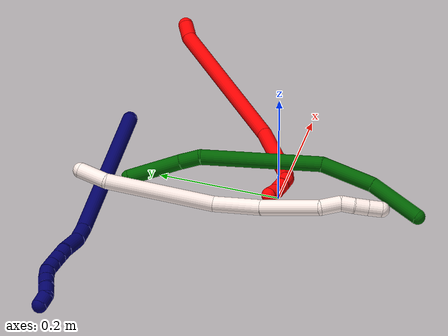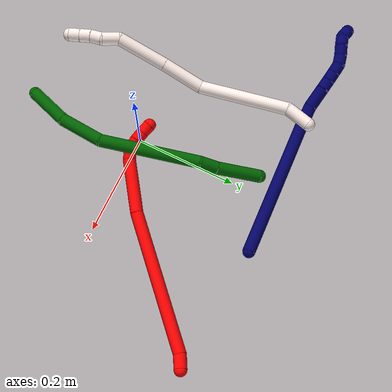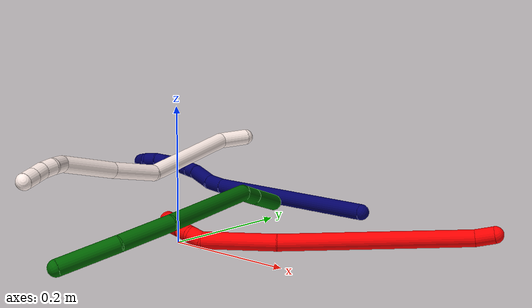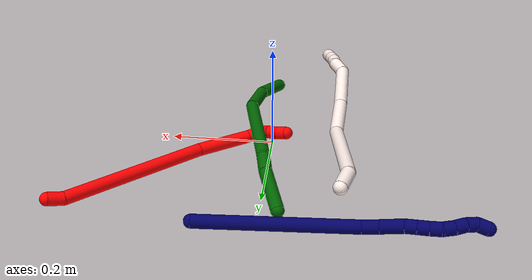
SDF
<sdf version="1.7">
 <world name="default">
  <model name="2">
   <static>0</static>
   <link name="2">
    <collision name="collision-cylinder-e_1_1_4">
     <pose>-0.003413 -0.002862 -0.014145 2.94198 -0.232242 -1.72277</pose>
     <geometry><cylinder><radius>0.0125</radius><length>0.029659</length></cylinder></geometry>
     <surface>
      <friction><ode><mu>1.16</mu><mu2>1.16</mu2><slip1>0</slip1><slip2>0</slip2></ode></friction>
      <contact><ode><kp>1e+06</kp><kd>1</kd><max_vel>0</max_vel><min_depth>0.001</min_depth></ode></contact>
     </surface>
    </collision>
    <visual name="visual-cylinder-e_1_1_4">
     <pose>-0.003413 -0.002862 -0.014145 2.94198 -0.232242 -1.72277</pose>
     <geometry><cylinder><radius>0.0125</radius><length>0.029659</length></cylinder></geometry>
     <material><ambient>1 0 0 1</ambient></material>
    </visual>
    <collision name="collision-cylinder-e_2_4_5">
     <pose>-0.029843 -0.07486 -0.148525 2.61975 -0.16445 -0.598732</pose>
     <geometry><cylinder><radius>0.0125</radius><length>0.281184</length></cylinder></geometry>
     <surface>
      <friction><ode><mu>1.16</mu><mu2>1.16</mu2><slip1>0</slip1><slip2>0</slip2></ode></friction>
      <contact><ode><kp>1e+06</kp><kd>1</kd><max_vel>0</max_vel><min_depth>0.001</min_depth></ode></contact>
     </surface>
    </collision>
    <visual name="visual-cylinder-e_2_4_5">
     <pose>-0.029843 -0.07486 -0.148525 2.61975 -0.16445 -0.598732</pose>
     <geometry><cylinder><radius>0.0125</radius><length>0.281184</length></cylinder></geometry>
     <material><ambient>1 0 0 1</ambient></material>
    </visual>
    <collision name="collision-cylinder-e_3_5_6">
     <pose>-0.068632 -0.166262 -0.315917 2.70049 -0.293714 -1.16643</pose>
     <geometry><cylinder><radius>0.0125</radius><length>0.108965</length></cylinder></geometry>
     <surface>
      <friction><ode><mu>1.16</mu><mu2>1.16</mu2><slip1>0</slip1><slip2>0</slip2></ode></friction>
      <contact><ode><kp>1e+06</kp><kd>1</kd><max_vel>0</max_vel><min_depth>0.001</min_depth></ode></contact>
     </surface>
    </collision>
    <visual name="visual-cylinder-e_3_5_6">
     <pose>-0.068632 -0.166262 -0.315917 2.70049 -0.293714 -1.16643</pose>
     <geometry><cylinder><radius>0.0125</radius><length>0.108965</length></cylinder></geometry>
     <material><ambient>1 0 0 1</ambient></material>
    </visual>
    <collision name="collision-cylinder-e_4_6_7">
     <pose>-0.091101 -0.192611 -0.369299 2.56093 -0.732546 -1.81811</pose>
     <geometry><cylinder><radius>0.0125</radius><length>0.020025</length></cylinder></geometry>
     <surface>
      <friction><ode><mu>1.16</mu><mu2>1.16</mu2><slip1>0</slip1><slip2>0</slip2></ode></friction>
      <contact><ode><kp>1e+06</kp><kd>1</kd><max_vel>0</max_vel><min_depth>0.001</min_depth></ode></contact>
     </surface>
    </collision>
    <visual name="visual-cylinder-e_4_6_7">
     <pose>-0.091101 -0.192611 -0.369299 2.56093 -0.732546 -1.81811</pose>
     <geometry><cylinder><radius>0.0125</radius><length>0.020025</length></cylinder></geometry>
     <material><ambient>1 0 0 1</ambient></material>
    </visual>
    <collision name="collision-cylinder-e_5_7_8">
     <pose>-0.105878 -0.19688 -0.381474 3.11039 -0.935757 -3.07985</pose>
     <geometry><cylinder><radius>0.0125</radius><length>0.020076</length></cylinder></geometry>
     <surface>
      <friction><ode><mu>1.16</mu><mu2>1.16</mu2><slip1>0</slip1><slip2>0</slip2></ode></friction>
      <contact><ode><kp>1e+06</kp><kd>1</kd><max_vel>0</max_vel><min_depth>0.001</min_depth></ode></contact>
     </surface>
    </collision>
    <visual name="visual-cylinder-e_5_7_8">
     <pose>-0.105878 -0.19688 -0.381474 3.11039 -0.935757 -3.07985</pose>
     <geometry><cylinder><radius>0.0125</radius><length>0.020076</length></cylinder></geometry>
     <material><ambient>1 0 0 1</ambient></material>
    </visual>
    <collision name="collision-cylinder-e_6_8_9">
     <pose>-0.121774 -0.195439 -0.393465 -2.8785 -0.895902 2.60423</pose>
     <geometry><cylinder><radius>0.0125</radius><length>0.020018</length></cylinder></geometry>
     <surface>
      <friction><ode><mu>1.16</mu><mu2>1.16</mu2><slip1>0</slip1><slip2>0</slip2></ode></friction>
      <contact><ode><kp>1e+06</kp><kd>1</kd><max_vel>0</max_vel><min_depth>0.001</min_depth></ode></contact>
     </surface>
    </collision>
    <visual name="visual-cylinder-e_6_8_9">
     <pose>-0.121774 -0.195439 -0.393465 -2.8785 -0.895902 2.60423</pose>
     <geometry><cylinder><radius>0.0125</radius><length>0.020018</length></cylinder></geometry>
     <material><ambient>1 0 0 1</ambient></material>
    </visual>
    <collision name="collision-cylinder-e_7_9_2">
     <pose>-0.138675 -0.192649 -0.403604 -2.86514 -1.13216 2.71055</pose>
     <geometry><cylinder><radius>0.0125</radius><length>0.020073</length></cylinder></geometry>
     <surface>
      <friction><ode><mu>1.16</mu><mu2>1.16</mu2><slip1>0</slip1><slip2>0</slip2></ode></friction>
      <contact><ode><kp>1e+06</kp><kd>1</kd><max_vel>0</max_vel><min_depth>0.001</min_depth></ode></contact>
     </surface>
    </collision>
    <visual name="visual-cylinder-e_7_9_2">
     <pose>-0.138675 -0.192649 -0.403604 -2.86514 -1.13216 2.71055</pose>
     <geometry><cylinder><radius>0.0125</radius><length>0.020073</length></cylinder></geometry>
     <material><ambient>1 0 0 1</ambient></material>
    </visual>
    <collision name="collision-sphere-2">
     <pose>-0.147761 -0.191486 -0.407705 0 -0 0</pose>
     <geometry><sphere><radius>0.0125</radius></sphere></geometry>
     <surface>
      <friction><ode><mu>1.16</mu><mu2>1.16</mu2><slip1>0</slip1><slip2>0</slip2></ode></friction>
      <contact><ode><kp>1e+06</kp><kd>1</kd><max_vel>0</max_vel><min_depth>0.001</min_depth></ode></contact>
     </surface>
    </collision>
    <visual name="visual-sphere-2">
     <pose>-0.147761 -0.191486 -0.407705 0 -0 0</pose>
     <geometry><sphere><radius>0.0125</radius></sphere></geometry>
     <material><ambient>1 0 0 1</ambient></material>
    </visual>
    <collision name="collision-sphere-9">
     <pose>-0.129589 -0.193813 -0.399503 0 -0 0</pose>
     <geometry><sphere><radius>0.0125</radius></sphere></geometry>
     <surface>
      <friction><ode><mu>1.16</mu><mu2>1.16</mu2><slip1>0</slip1><slip2>0</slip2></ode></friction>
      <contact><ode><kp>1e+06</kp><kd>1</kd><max_vel>0</max_vel><min_depth>0.001</min_depth></ode></contact>
     </surface>
    </collision>
    <visual name="visual-sphere-9">
     <pose>-0.129589 -0.193813 -0.399503 0 -0 0</pose>
     <geometry><sphere><radius>0.0125</radius></sphere></geometry>
     <material><ambient>1 0 0 1</ambient></material>
    </visual>
    <collision name="collision-sphere-4">
     <pose>-0.006826 -0.005723 -0.02829 0 -0 0</pose>
     <geometry><sphere><radius>0.0125</radius></sphere></geometry>
     <surface>
      <friction><ode><mu>1.16</mu><mu2>1.16</mu2><slip1>0</slip1><slip2>0</slip2></ode></friction>
      <contact><ode><kp>1e+06</kp><kd>1</kd><max_vel>0</max_vel><min_depth>0.001</min_depth></ode></contact>
     </surface>
    </collision>
    <visual name="visual-sphere-4">
     <pose>-0.006826 -0.005723 -0.02829 0 -0 0</pose>
     <geometry><sphere><radius>0.0125</radius></sphere></geometry>
     <material><ambient>1 0 0 1</ambient></material>
    </visual>
    <collision name="collision-sphere-1">
     <geometry><sphere><radius>0.0125</radius></sphere></geometry>
     <surface>
      <friction><ode><mu>1.16</mu><mu2>1.16</mu2><slip1>0</slip1><slip2>0</slip2></ode></friction>
      <contact><ode><kp>1e+06</kp><kd>1</kd><max_vel>0</max_vel><min_depth>0.001</min_depth></ode></contact>
     </surface>
    </collision>
    <visual name="visual-sphere-1">
     <geometry><sphere><radius>0.0125</radius></sphere></geometry>
     <material><ambient>1 0 0 1</ambient></material>
    </visual>
    <collision name="collision-sphere-8">
     <pose>-0.113959 -0.197066 -0.387426 0 -0 0</pose>
     <geometry><sphere><radius>0.0125</radius></sphere></geometry>
     <surface>
      <friction><ode><mu>1.16</mu><mu2>1.16</mu2><slip1>0</slip1><slip2>0</slip2></ode></friction>
      <contact><ode><kp>1e+06</kp><kd>1</kd><max_vel>0</max_vel><min_depth>0.001</min_depth></ode></contact>
     </surface>
    </collision>
    <visual name="visual-sphere-8">
     <pose>-0.113959 -0.197066 -0.387426 0 -0 0</pose>
     <geometry><sphere><radius>0.0125</radius></sphere></geometry>
     <material><ambient>1 0 0 1</ambient></material>
    </visual>
    <collision name="collision-sphere-5">
     <pose>-0.052859 -0.143998 -0.26876 0 -0 0</pose>
     <geometry><sphere><radius>0.0125</radius></sphere></geometry>
     <surface>
      <friction><ode><mu>1.16</mu><mu2>1.16</mu2><slip1>0</slip1><slip2>0</slip2></ode></friction>
      <contact><ode><kp>1e+06</kp><kd>1</kd><max_vel>0</max_vel><min_depth>0.001</min_depth></ode></contact>
     </surface>
    </collision>
    <visual name="visual-sphere-5">
     <pose>-0.052859 -0.143998 -0.26876 0 -0 0</pose>
     <geometry><sphere><radius>0.0125</radius></sphere></geometry>
     <material><ambient>1 0 0 1</ambient></material>
    </visual>
    <collision name="collision-sphere-6">
     <pose>-0.084405 -0.188527 -0.363075 0 -0 0</pose>
     <geometry><sphere><radius>0.0125</radius></sphere></geometry>
     <surface>
      <friction><ode><mu>1.16</mu><mu2>1.16</mu2><slip1>0</slip1><slip2>0</slip2></ode></friction>
      <contact><ode><kp>1e+06</kp><kd>1</kd><max_vel>0</max_vel><min_depth>0.001</min_depth></ode></contact>
     </surface>
    </collision>
    <visual name="visual-sphere-6">
     <pose>-0.084405 -0.188527 -0.363075 0 -0 0</pose>
     <geometry><sphere><radius>0.0125</radius></sphere></geometry>
     <material><ambient>1 0 0 1</ambient></material>
    </visual>
    <collision name="collision-sphere-7">
     <pose>-0.097797 -0.196694 -0.375523 0 -0 0</pose>
     <geometry><sphere><radius>0.0125</radius></sphere></geometry>
     <surface>
      <friction><ode><mu>1.16</mu><mu2>1.16</mu2><slip1>0</slip1><slip2>0</slip2></ode></friction>
      <contact><ode><kp>1e+06</kp><kd>1</kd><max_vel>0</max_vel><min_depth>0.001</min_depth></ode></contact>
     </surface>
    </collision>
    <visual name="visual-sphere-7">
     <pose>-0.097797 -0.196694 -0.375523 0 -0 0</pose>
     <geometry><sphere><radius>0.0125</radius></sphere></geometry>
     <material><ambient>1 0 0 1</ambient></material>
    </visual>
    <inertial>
     <pose>-0.050284 -0.10968 -0.215275 0 -0 0</pose>
     <mass>0.5</mass>
     <inertia>
      <ixx>0.000408</ixx>
      <ixy>0</ixy>
      <ixz>0</ixz>
      <iyy>-0.002424</iyy>
      <iyz>0</iyz>
      <izz>0.001274</izz>
     </inertia>
    </inertial>
   </link>
   <pose>0.365877 0.270347 0.024046 -0.905475 0.620976 -0.596148</pose>
  </model>
  <model name="6">
   <static>0</static>
   <link name="6">
    <collision name="collision-cylinder-e_1_1_4">
     <pose>0.027187 -0.029705 0.018207 1.02094 0.662621 0.380589</pose>
     <geometry><cylinder><radius>0.0125</radius><length>0.088386</length></cylinder></geometry>
     <surface>
      <friction><ode><mu>1.16</mu><mu2>1.16</mu2><slip1>0</slip1><slip2>0</slip2></ode></friction>
      <contact><ode><kp>1e+06</kp><kd>1</kd><max_vel>0</max_vel><min_depth>0.001</min_depth></ode></contact>
     </surface>
    </collision>
    <visual name="visual-cylinder-e_1_1_4">
     <pose>0.027187 -0.029705 0.018207 1.02094 0.662621 0.380589</pose>
     <geometry><cylinder><radius>0.0125</radius><length>0.088386</length></cylinder></geometry>
     <material><ambient>0 0.392157 0.003922 1</ambient></material>
    </visual>
    <collision name="collision-cylinder-e_2_4_5">
     <pose>0.065979 -0.069295 0.044577 0.880466 0.735735 0.359196</pose>
     <geometry><cylinder><radius>0.0125</radius><length>0.034585</length></cylinder></geometry>
     <surface>
      <friction><ode><mu>1.16</mu><mu2>1.16</mu2><slip1>0</slip1><slip2>0</slip2></ode></friction>
      <contact><ode><kp>1e+06</kp><kd>1</kd><max_vel>0</max_vel><min_depth>0.001</min_depth></ode></contact>
     </surface>
    </collision>
    <visual name="visual-cylinder-e_2_4_5">
     <pose>0.065979 -0.069295 0.044577 0.880466 0.735735 0.359196</pose>
     <geometry><cylinder><radius>0.0125</radius><length>0.034585</length></cylinder></geometry>
     <material><ambient>0 0.392157 0.003922 1</ambient></material>
    </visual>
    <collision name="collision-cylinder-e_3_5_6">
     <pose>0.113661 -0.142113 0.119111 0.758826 0.375696 0.1513</pose>
     <geometry><cylinder><radius>0.0125</radius><length>0.196643</length></cylinder></geometry>
     <surface>
      <friction><ode><mu>1.16</mu><mu2>1.16</mu2><slip1>0</slip1><slip2>0</slip2></ode></friction>
      <contact><ode><kp>1e+06</kp><kd>1</kd><max_vel>0</max_vel><min_depth>0.001</min_depth></ode></contact>
     </surface>
    </collision>
    <visual name="visual-cylinder-e_3_5_6">
     <pose>0.113661 -0.142113 0.119111 0.758826 0.375696 0.1513</pose>
     <geometry><cylinder><radius>0.0125</radius><length>0.196643</length></cylinder></geometry>
     <material><ambient>0 0.392157 0.003922 1</ambient></material>
    </visual>
    <collision name="collision-cylinder-e_4_6_7">
     <pose>0.162796 -0.221037 0.225083 0.383759 0.296729 0.058056</pose>
     <geometry><cylinder><radius>0.0125</radius><length>0.089322</length></cylinder></geometry>
     <surface>
      <friction><ode><mu>1.16</mu><mu2>1.16</mu2><slip1>0</slip1><slip2>0</slip2></ode></friction>
      <contact><ode><kp>1e+06</kp><kd>1</kd><max_vel>0</max_vel><min_depth>0.001</min_depth></ode></contact>
     </surface>
    </collision>
    <visual name="visual-cylinder-e_4_6_7">
     <pose>0.162796 -0.221037 0.225083 0.383759 0.296729 0.058056</pose>
     <geometry><cylinder><radius>0.0125</radius><length>0.089322</length></cylinder></geometry>
     <material><ambient>0 0.392157 0.003922 1</ambient></material>
    </visual>
    <collision name="collision-cylinder-e_5_7_2">
     <pose>0.185687 -0.243025 0.308737 0.135293 0.217668 0.014805</pose>
     <geometry><cylinder><radius>0.0125</radius><length>0.091064</length></cylinder></geometry>
     <surface>
      <friction><ode><mu>1.16</mu><mu2>1.16</mu2><slip1>0</slip1><slip2>0</slip2></ode></friction>
      <contact><ode><kp>1e+06</kp><kd>1</kd><max_vel>0</max_vel><min_depth>0.001</min_depth></ode></contact>
     </surface>
    </collision>
    <visual name="visual-cylinder-e_5_7_2">
     <pose>0.185687 -0.243025 0.308737 0.135293 0.217668 0.014805</pose>
     <geometry><cylinder><radius>0.0125</radius><length>0.091064</length></cylinder></geometry>
     <material><ambient>0 0.392157 0.003922 1</ambient></material>
    </visual>
    <collision name="collision-sphere-2">
     <pose>0.19552 -0.249021 0.352789 0 -0 0</pose>
     <geometry><sphere><radius>0.0125</radius></sphere></geometry>
     <surface>
      <friction><ode><mu>1.16</mu><mu2>1.16</mu2><slip1>0</slip1><slip2>0</slip2></ode></friction>
      <contact><ode><kp>1e+06</kp><kd>1</kd><max_vel>0</max_vel><min_depth>0.001</min_depth></ode></contact>
     </surface>
    </collision>
    <visual name="visual-sphere-2">
     <pose>0.19552 -0.249021 0.352789 0 -0 0</pose>
     <geometry><sphere><radius>0.0125</radius></sphere></geometry>
     <material><ambient>0 0.392157 0.003922 1</ambient></material>
    </visual>
    <collision name="collision-sphere-7">
     <pose>0.175854 -0.237028 0.264686 0 -0 0</pose>
     <geometry><sphere><radius>0.0125</radius></sphere></geometry>
     <surface>
      <friction><ode><mu>1.16</mu><mu2>1.16</mu2><slip1>0</slip1><slip2>0</slip2></ode></friction>
      <contact><ode><kp>1e+06</kp><kd>1</kd><max_vel>0</max_vel><min_depth>0.001</min_depth></ode></contact>
     </surface>
    </collision>
    <visual name="visual-sphere-7">
     <pose>0.175854 -0.237028 0.264686 0 -0 0</pose>
     <geometry><sphere><radius>0.0125</radius></sphere></geometry>
     <material><ambient>0 0.392157 0.003922 1</ambient></material>
    </visual>
    <collision name="collision-sphere-6">
     <pose>0.149737 -0.205047 0.185481 0 -0 0</pose>
     <geometry><sphere><radius>0.0125</radius></sphere></geometry>
     <surface>
      <friction><ode><mu>1.16</mu><mu2>1.16</mu2><slip1>0</slip1><slip2>0</slip2></ode></friction>
      <contact><ode><kp>1e+06</kp><kd>1</kd><max_vel>0</max_vel><min_depth>0.001</min_depth></ode></contact>
     </surface>
    </collision>
    <visual name="visual-sphere-6">
     <pose>0.149737 -0.205047 0.185481 0 -0 0</pose>
     <geometry><sphere><radius>0.0125</radius></sphere></geometry>
     <material><ambient>0 0.392157 0.003922 1</ambient></material>
    </visual>
    <collision name="collision-sphere-5">
     <pose>0.077585 -0.07918 0.05274 0 -0 0</pose>
     <geometry><sphere><radius>0.0125</radius></sphere></geometry>
     <surface>
      <friction><ode><mu>1.16</mu><mu2>1.16</mu2><slip1>0</slip1><slip2>0</slip2></ode></friction>
      <contact><ode><kp>1e+06</kp><kd>1</kd><max_vel>0</max_vel><min_depth>0.001</min_depth></ode></contact>
     </surface>
    </collision>
    <visual name="visual-sphere-5">
     <pose>0.077585 -0.07918 0.05274 0 -0 0</pose>
     <geometry><sphere><radius>0.0125</radius></sphere></geometry>
     <material><ambient>0 0.392157 0.003922 1</ambient></material>
    </visual>
    <collision name="collision-sphere-1">
     <geometry><sphere><radius>0.0125</radius></sphere></geometry>
     <surface>
      <friction><ode><mu>1.16</mu><mu2>1.16</mu2><slip1>0</slip1><slip2>0</slip2></ode></friction>
      <contact><ode><kp>1e+06</kp><kd>1</kd><max_vel>0</max_vel><min_depth>0.001</min_depth></ode></contact>
     </surface>
    </collision>
    <visual name="visual-sphere-1">
     <geometry><sphere><radius>0.0125</radius></sphere></geometry>
     <material><ambient>0 0.392157 0.003922 1</ambient></material>
    </visual>
    <collision name="collision-sphere-4">
     <pose>0.054374 -0.059411 0.036414 0 -0 0</pose>
     <geometry><sphere><radius>0.0125</radius></sphere></geometry>
     <surface>
      <friction><ode><mu>1.16</mu><mu2>1.16</mu2><slip1>0</slip1><slip2>0</slip2></ode></friction>
      <contact><ode><kp>1e+06</kp><kd>1</kd><max_vel>0</max_vel><min_depth>0.001</min_depth></ode></contact>
     </surface>
    </collision>
    <visual name="visual-sphere-4">
     <pose>0.054374 -0.059411 0.036414 0 -0 0</pose>
     <geometry><sphere><radius>0.0125</radius></sphere></geometry>
     <material><ambient>0 0.392157 0.003922 1</ambient></material>
    </visual>
    <inertial>
     <pose>0.116972 -0.149684 0.149586 0 -0 0</pose>
     <mass>0.5</mass>
     <inertia>
      <ixx>0.000891</ixx>
      <ixy>0</ixy>
      <ixz>0</ixz>
      <iyy>0.000748</iyy>
      <iyz>0</iyz>
      <izz>0.000204</izz>
     </inertia>
    </inertial>
   </link>
   <pose>-0.033462 0.2428 0.012503 2.95508 -1.10668 -1.87438</pose>
  </model>
  <model name="7">
   <static>0</static>
   <link name="7">
    <collision name="collision-cylinder-e_1_1_4">
     <pose>-0.099352 -0.066624 0.079631 0.696694 -0.763381 -0.289485</pose>
     <geometry><cylinder><radius>0.0125</radius><length>0.287406</length></cylinder></geometry>
     <surface>
      <friction><ode><mu>1.16</mu><mu2>1.16</mu2><slip1>0</slip1><slip2>0</slip2></ode></friction>
      <contact><ode><kp>1e+06</kp><kd>1</kd><max_vel>0</max_vel><min_depth>0.001</min_depth></ode></contact>
     </surface>
    </collision>
    <visual name="visual-cylinder-e_1_1_4">
     <pose>-0.099352 -0.066624 0.079631 0.696694 -0.763381 -0.289485</pose>
     <geometry><cylinder><radius>0.0125</radius><length>0.287406</length></cylinder></geometry>
     <material><ambient>0.003922 0 0.403922 1</ambient></material>
    </visual>
    <collision name="collision-cylinder-e_2_4_5">
     <pose>-0.209727 -0.138761 0.167996 0.563129 -0.817961 -0.249431</pose>
     <geometry><cylinder><radius>0.0125</radius><length>0.030212</length></cylinder></geometry>
     <surface>
      <friction><ode><mu>1.16</mu><mu2>1.16</mu2><slip1>0</slip1><slip2>0</slip2></ode></friction>
      <contact><ode><kp>1e+06</kp><kd>1</kd><max_vel>0</max_vel><min_depth>0.001</min_depth></ode></contact>
     </surface>
    </collision>
    <visual name="visual-cylinder-e_2_4_5">
     <pose>-0.209727 -0.138761 0.167996 0.563129 -0.817961 -0.249431</pose>
     <geometry><cylinder><radius>0.0125</radius><length>0.030212</length></cylinder></geometry>
     <material><ambient>0.003922 0 0.403922 1</ambient></material>
    </visual>
    <collision name="collision-cylinder-e_3_5_6">
     <pose>-0.238229 -0.147628 0.188079 0.28726 -0.975569 -0.153161</pose>
     <geometry><cylinder><radius>0.0125</radius><length>0.042215</length></cylinder></geometry>
     <surface>
      <friction><ode><mu>1.16</mu><mu2>1.16</mu2><slip1>0</slip1><slip2>0</slip2></ode></friction>
      <contact><ode><kp>1e+06</kp><kd>1</kd><max_vel>0</max_vel><min_depth>0.001</min_depth></ode></contact>
     </surface>
    </collision>
    <visual name="visual-cylinder-e_3_5_6">
     <pose>-0.238229 -0.147628 0.188079 0.28726 -0.975569 -0.153161</pose>
     <geometry><cylinder><radius>0.0125</radius><length>0.042215</length></cylinder></geometry>
     <material><ambient>0.003922 0 0.403922 1</ambient></material>
    </visual>
    <collision name="collision-cylinder-e_4_6_7">
     <pose>-0.263989 -0.154188 0.2041 0.601697 -0.970907 -0.324492</pose>
     <geometry><cylinder><radius>0.0125</radius><length>0.020072</length></cylinder></geometry>
     <surface>
      <friction><ode><mu>1.16</mu><mu2>1.16</mu2><slip1>0</slip1><slip2>0</slip2></ode></friction>
      <contact><ode><kp>1e+06</kp><kd>1</kd><max_vel>0</max_vel><min_depth>0.001</min_depth></ode></contact>
     </surface>
    </collision>
    <visual name="visual-cylinder-e_4_6_7">
     <pose>-0.263989 -0.154188 0.2041 0.601697 -0.970907 -0.324492</pose>
     <geometry><cylinder><radius>0.0125</radius><length>0.020072</length></cylinder></geometry>
     <material><ambient>0.003922 0 0.403922 1</ambient></material>
    </visual>
    <collision name="collision-cylinder-e_5_7_8">
     <pose>-0.280498 -0.160701 0.213433 0.616812 -0.963512 -0.330096</pose>
     <geometry><cylinder><radius>0.0125</radius><length>0.020032</length></cylinder></geometry>
     <surface>
      <friction><ode><mu>1.16</mu><mu2>1.16</mu2><slip1>0</slip1><slip2>0</slip2></ode></friction>
      <contact><ode><kp>1e+06</kp><kd>1</kd><max_vel>0</max_vel><min_depth>0.001</min_depth></ode></contact>
     </surface>
    </collision>
    <visual name="visual-cylinder-e_5_7_8">
     <pose>-0.280498 -0.160701 0.213433 0.616812 -0.963512 -0.330096</pose>
     <geometry><cylinder><radius>0.0125</radius><length>0.020032</length></cylinder></geometry>
     <material><ambient>0.003922 0 0.403922 1</ambient></material>
    </visual>
    <collision name="collision-cylinder-e_6_8_9">
     <pose>-0.2968 -0.167177 0.223083 0.566188 -0.939042 -0.293075</pose>
     <geometry><cylinder><radius>0.0125</radius><length>0.020017</length></cylinder></geometry>
     <surface>
      <friction><ode><mu>1.16</mu><mu2>1.16</mu2><slip1>0</slip1><slip2>0</slip2></ode></friction>
      <contact><ode><kp>1e+06</kp><kd>1</kd><max_vel>0</max_vel><min_depth>0.001</min_depth></ode></contact>
     </surface>
    </collision>
    <visual name="visual-cylinder-e_6_8_9">
     <pose>-0.2968 -0.167177 0.223083 0.566188 -0.939042 -0.293075</pose>
     <geometry><cylinder><radius>0.0125</radius><length>0.020017</length></cylinder></geometry>
     <material><ambient>0.003922 0 0.403922 1</ambient></material>
    </visual>
    <collision name="collision-cylinder-e_7_9_10">
     <pose>-0.310408 -0.17514 0.234917 0.610716 -0.584773 -0.189203</pose>
     <geometry><cylinder><radius>0.0125</radius><length>0.020041</length></cylinder></geometry>
     <surface>
      <friction><ode><mu>1.16</mu><mu2>1.16</mu2><slip1>0</slip1><slip2>0</slip2></ode></friction>
      <contact><ode><kp>1e+06</kp><kd>1</kd><max_vel>0</max_vel><min_depth>0.001</min_depth></ode></contact>
     </surface>
    </collision>
    <visual name="visual-cylinder-e_7_9_10">
     <pose>-0.310408 -0.17514 0.234917 0.610716 -0.584773 -0.189203</pose>
     <geometry><cylinder><radius>0.0125</radius><length>0.020041</length></cylinder></geometry>
     <material><ambient>0.003922 0 0.403922 1</ambient></material>
    </visual>
    <collision name="collision-cylinder-e_8_10_11">
     <pose>-0.320425 -0.18458 0.249396 0.54702 -0.465122 -0.132695</pose>
     <geometry><cylinder><radius>0.0125</radius><length>0.020001</length></cylinder></geometry>
     <surface>
      <friction><ode><mu>1.16</mu><mu2>1.16</mu2><slip1>0</slip1><slip2>0</slip2></ode></friction>
      <contact><ode><kp>1e+06</kp><kd>1</kd><max_vel>0</max_vel><min_depth>0.001</min_depth></ode></contact>
     </surface>
    </collision>
    <visual name="visual-cylinder-e_8_10_11">
     <pose>-0.320425 -0.18458 0.249396 0.54702 -0.465122 -0.132695</pose>
     <geometry><cylinder><radius>0.0125</radius><length>0.020001</length></cylinder></geometry>
     <material><ambient>0.003922 0 0.403922 1</ambient></material>
    </visual>
    <collision name="collision-cylinder-e_9_11_12">
     <pose>-0.329835 -0.195238 0.263327 0.761942 -0.51489 -0.210137</pose>
     <geometry><cylinder><radius>0.0125</radius><length>0.020001</length></cylinder></geometry>
     <surface>
      <friction><ode><mu>1.16</mu><mu2>1.16</mu2><slip1>0</slip1><slip2>0</slip2></ode></friction>
      <contact><ode><kp>1e+06</kp><kd>1</kd><max_vel>0</max_vel><min_depth>0.001</min_depth></ode></contact>
     </surface>
    </collision>
    <visual name="visual-cylinder-e_9_11_12">
     <pose>-0.329835 -0.195238 0.263327 0.761942 -0.51489 -0.210137</pose>
     <geometry><cylinder><radius>0.0125</radius><length>0.020001</length></cylinder></geometry>
     <material><ambient>0.003922 0 0.403922 1</ambient></material>
    </visual>
    <collision name="collision-cylinder-e_10_12_2">
     <pose>-0.342848 -0.20665 0.271951 1.16418 -0.941931 -0.646721</pose>
     <geometry><cylinder><radius>0.0125</radius><length>0.020002</length></cylinder></geometry>
     <surface>
      <friction><ode><mu>1.16</mu><mu2>1.16</mu2><slip1>0</slip1><slip2>0</slip2></ode></friction>
      <contact><ode><kp>1e+06</kp><kd>1</kd><max_vel>0</max_vel><min_depth>0.001</min_depth></ode></contact>
     </surface>
    </collision>
    <visual name="visual-cylinder-e_10_12_2">
     <pose>-0.342848 -0.20665 0.271951 1.16418 -0.941931 -0.646721</pose>
     <geometry><cylinder><radius>0.0125</radius><length>0.020002</length></cylinder></geometry>
     <material><ambient>0.003922 0 0.403922 1</ambient></material>
    </visual>
    <collision name="collision-sphere-2">
     <pose>-0.350936 -0.212053 0.274278 0 -0 0</pose>
     <geometry><sphere><radius>0.0125</radius></sphere></geometry>
     <surface>
      <friction><ode><mu>1.16</mu><mu2>1.16</mu2><slip1>0</slip1><slip2>0</slip2></ode></friction>
      <contact><ode><kp>1e+06</kp><kd>1</kd><max_vel>0</max_vel><min_depth>0.001</min_depth></ode></contact>
     </surface>
    </collision>
    <visual name="visual-sphere-2">
     <pose>-0.350936 -0.212053 0.274278 0 -0 0</pose>
     <geometry><sphere><radius>0.0125</radius></sphere></geometry>
     <material><ambient>0.003922 0 0.403922 1</ambient></material>
    </visual>
    <collision name="collision-sphere-12">
     <pose>-0.33476 -0.201247 0.269624 0 -0 0</pose>
     <geometry><sphere><radius>0.0125</radius></sphere></geometry>
     <surface>
      <friction><ode><mu>1.16</mu><mu2>1.16</mu2><slip1>0</slip1><slip2>0</slip2></ode></friction>
      <contact><ode><kp>1e+06</kp><kd>1</kd><max_vel>0</max_vel><min_depth>0.001</min_depth></ode></contact>
     </surface>
    </collision>
    <visual name="visual-sphere-12">
     <pose>-0.33476 -0.201247 0.269624 0 -0 0</pose>
     <geometry><sphere><radius>0.0125</radius></sphere></geometry>
     <material><ambient>0.003922 0 0.403922 1</ambient></material>
    </visual>
    <collision name="collision-sphere-11">
     <pose>-0.324911 -0.189229 0.25703 0 -0 0</pose>
     <geometry><sphere><radius>0.0125</radius></sphere></geometry>
     <surface>
      <friction><ode><mu>1.16</mu><mu2>1.16</mu2><slip1>0</slip1><slip2>0</slip2></ode></friction>
      <contact><ode><kp>1e+06</kp><kd>1</kd><max_vel>0</max_vel><min_depth>0.001</min_depth></ode></contact>
     </surface>
    </collision>
    <visual name="visual-sphere-11">
     <pose>-0.324911 -0.189229 0.25703 0 -0 0</pose>
     <geometry><sphere><radius>0.0125</radius></sphere></geometry>
     <material><ambient>0.003922 0 0.403922 1</ambient></material>
    </visual>
    <collision name="collision-sphere-10">
     <pose>-0.31594 -0.179931 0.241762 0 -0 0</pose>
     <geometry><sphere><radius>0.0125</radius></sphere></geometry>
     <surface>
      <friction><ode><mu>1.16</mu><mu2>1.16</mu2><slip1>0</slip1><slip2>0</slip2></ode></friction>
      <contact><ode><kp>1e+06</kp><kd>1</kd><max_vel>0</max_vel><min_depth>0.001</min_depth></ode></contact>
     </surface>
    </collision>
    <visual name="visual-sphere-10">
     <pose>-0.31594 -0.179931 0.241762 0 -0 0</pose>
     <geometry><sphere><radius>0.0125</radius></sphere></geometry>
     <material><ambient>0.003922 0 0.403922 1</ambient></material>
    </visual>
    <collision name="collision-sphere-9">
     <pose>-0.304877 -0.170348 0.228071 0 -0 0</pose>
     <geometry><sphere><radius>0.0125</radius></sphere></geometry>
     <surface>
      <friction><ode><mu>1.16</mu><mu2>1.16</mu2><slip1>0</slip1><slip2>0</slip2></ode></friction>
      <contact><ode><kp>1e+06</kp><kd>1</kd><max_vel>0</max_vel><min_depth>0.001</min_depth></ode></contact>
     </surface>
    </collision>
    <visual name="visual-sphere-9">
     <pose>-0.304877 -0.170348 0.228071 0 -0 0</pose>
     <geometry><sphere><radius>0.0125</radius></sphere></geometry>
     <material><ambient>0.003922 0 0.403922 1</ambient></material>
    </visual>
    <collision name="collision-sphere-4">
     <pose>-0.198704 -0.133247 0.159262 0 -0 0</pose>
     <geometry><sphere><radius>0.0125</radius></sphere></geometry>
     <surface>
      <friction><ode><mu>1.16</mu><mu2>1.16</mu2><slip1>0</slip1><slip2>0</slip2></ode></friction>
      <contact><ode><kp>1e+06</kp><kd>1</kd><max_vel>0</max_vel><min_depth>0.001</min_depth></ode></contact>
     </surface>
    </collision>
    <visual name="visual-sphere-4">
     <pose>-0.198704 -0.133247 0.159262 0 -0 0</pose>
     <geometry><sphere><radius>0.0125</radius></sphere></geometry>
     <material><ambient>0.003922 0 0.403922 1</ambient></material>
    </visual>
    <collision name="collision-sphere-1">
     <geometry><sphere><radius>0.0125</radius></sphere></geometry>
     <surface>
      <friction><ode><mu>1.16</mu><mu2>1.16</mu2><slip1>0</slip1><slip2>0</slip2></ode></friction>
      <contact><ode><kp>1e+06</kp><kd>1</kd><max_vel>0</max_vel><min_depth>0.001</min_depth></ode></contact>
     </surface>
    </collision>
    <visual name="visual-sphere-1">
     <geometry><sphere><radius>0.0125</radius></sphere></geometry>
     <material><ambient>0.003922 0 0.403922 1</ambient></material>
    </visual>
    <collision name="collision-sphere-8">
     <pose>-0.288723 -0.164007 0.218095 0 -0 0</pose>
     <geometry><sphere><radius>0.0125</radius></sphere></geometry>
     <surface>
      <friction><ode><mu>1.16</mu><mu2>1.16</mu2><slip1>0</slip1><slip2>0</slip2></ode></friction>
      <contact><ode><kp>1e+06</kp><kd>1</kd><max_vel>0</max_vel><min_depth>0.001</min_depth></ode></contact>
     </surface>
    </collision>
    <visual name="visual-sphere-8">
     <pose>-0.288723 -0.164007 0.218095 0 -0 0</pose>
     <geometry><sphere><radius>0.0125</radius></sphere></geometry>
     <material><ambient>0.003922 0 0.403922 1</ambient></material>
    </visual>
    <collision name="collision-sphere-5">
     <pose>-0.220751 -0.144274 0.176729 0 -0 0</pose>
     <geometry><sphere><radius>0.0125</radius></sphere></geometry>
     <surface>
      <friction><ode><mu>1.16</mu><mu2>1.16</mu2><slip1>0</slip1><slip2>0</slip2></ode></friction>
      <contact><ode><kp>1e+06</kp><kd>1</kd><max_vel>0</max_vel><min_depth>0.001</min_depth></ode></contact>
     </surface>
    </collision>
    <visual name="visual-sphere-5">
     <pose>-0.220751 -0.144274 0.176729 0 -0 0</pose>
     <geometry><sphere><radius>0.0125</radius></sphere></geometry>
     <material><ambient>0.003922 0 0.403922 1</ambient></material>
    </visual>
    <collision name="collision-sphere-6">
     <pose>-0.255706 -0.150981 0.199429 0 -0 0</pose>
     <geometry><sphere><radius>0.0125</radius></sphere></geometry>
     <surface>
      <friction><ode><mu>1.16</mu><mu2>1.16</mu2><slip1>0</slip1><slip2>0</slip2></ode></friction>
      <contact><ode><kp>1e+06</kp><kd>1</kd><max_vel>0</max_vel><min_depth>0.001</min_depth></ode></contact>
     </surface>
    </collision>
    <visual name="visual-sphere-6">
     <pose>-0.255706 -0.150981 0.199429 0 -0 0</pose>
     <geometry><sphere><radius>0.0125</radius></sphere></geometry>
     <material><ambient>0.003922 0 0.403922 1</ambient></material>
    </visual>
    <collision name="collision-sphere-7">
     <pose>-0.272273 -0.157395 0.20877 0 -0 0</pose>
     <geometry><sphere><radius>0.0125</radius></sphere></geometry>
     <surface>
      <friction><ode><mu>1.16</mu><mu2>1.16</mu2><slip1>0</slip1><slip2>0</slip2></ode></friction>
      <contact><ode><kp>1e+06</kp><kd>1</kd><max_vel>0</max_vel><min_depth>0.001</min_depth></ode></contact>
     </surface>
    </collision>
    <visual name="visual-sphere-7">
     <pose>-0.272273 -0.157395 0.20877 0 -0 0</pose>
     <geometry><sphere><radius>0.0125</radius></sphere></geometry>
     <material><ambient>0.003922 0 0.403922 1</ambient></material>
    </visual>
    <inertial>
     <pose>-0.175782 -0.108946 0.138284 0 -0 0</pose>
     <mass>0.5</mass>
     <inertia>
      <ixx>0.00095</ixx>
      <ixy>0</ixy>
      <ixz>0</ixz>
      <iyy>0.001304</iyy>
      <iyz>0</iyz>
      <izz>0.002342</izz>
     </inertia>
    </inertial>
   </link>
   <pose>0.110162 0.287756 0.011694 0.946319 0.078285 -0.751411</pose>
  </model>
  <model name="11">
   <static>0</static>
   <link name="11">
    <collision name="collision-cylinder-e_1_1_4">
     <pose>0.00698 -0.020655 -0.009783 2.01314 0.2964 0.463342</pose>
     <geometry><cylinder><radius>0.0125</radius><length>0.047793</length></cylinder></geometry>
     <surface>
      <friction><ode><mu>1.16</mu><mu2>1.16</mu2><slip1>0</slip1><slip2>0</slip2></ode></friction>
      <contact><ode><kp>1e+06</kp><kd>1</kd><max_vel>0</max_vel><min_depth>0.001</min_depth></ode></contact>
     </surface>
    </collision>
    <visual name="visual-cylinder-e_1_1_4">
     <pose>0.00698 -0.020655 -0.009783 2.01314 0.2964 0.463342</pose>
     <geometry><cylinder><radius>0.0125</radius><length>0.047793</length></cylinder></geometry>
     <material><ambient>1 0.933333 0.909804 1</ambient></material>
    </visual>
    <collision name="collision-cylinder-e_2_4_5">
     <pose>0.010314 -0.109177 -0.074094 2.24764 -0.041854 -0.087275</pose>
     <geometry><cylinder><radius>0.0125</radius><length>0.174271</length></cylinder></geometry>
     <surface>
      <friction><ode><mu>1.16</mu><mu2>1.16</mu2><slip1>0</slip1><slip2>0</slip2></ode></friction>
      <contact><ode><kp>1e+06</kp><kd>1</kd><max_vel>0</max_vel><min_depth>0.001</min_depth></ode></contact>
     </surface>
    </collision>
    <visual name="visual-cylinder-e_2_4_5">
     <pose>0.010314 -0.109177 -0.074094 2.24764 -0.041854 -0.087275</pose>
     <geometry><cylinder><radius>0.0125</radius><length>0.174271</length></cylinder></geometry>
     <material><ambient>1 0.933333 0.909804 1</ambient></material>
    </visual>
    <collision name="collision-cylinder-e_3_5_6">
     <pose>0.02045 -0.205077 -0.154909 2.32404 0.344357 0.763518</pose>
     <geometry><cylinder><radius>0.0125</radius><length>0.081653</length></cylinder></geometry>
     <surface>
      <friction><ode><mu>1.16</mu><mu2>1.16</mu2><slip1>0</slip1><slip2>0</slip2></ode></friction>
      <contact><ode><kp>1e+06</kp><kd>1</kd><max_vel>0</max_vel><min_depth>0.001</min_depth></ode></contact>
     </surface>
    </collision>
    <visual name="visual-cylinder-e_3_5_6">
     <pose>0.02045 -0.205077 -0.154909 2.32404 0.344357 0.763518</pose>
     <geometry><cylinder><radius>0.0125</radius><length>0.081653</length></cylinder></geometry>
     <material><ambient>1 0.933333 0.909804 1</ambient></material>
    </visual>
    <collision name="collision-cylinder-e_4_6_7">
     <pose>0.050706 -0.264418 -0.215412 2.40056 0.341293 0.835056</pose>
     <geometry><cylinder><radius>0.0125</radius><length>0.098434</length></cylinder></geometry>
     <surface>
      <friction><ode><mu>1.16</mu><mu2>1.16</mu2><slip1>0</slip1><slip2>0</slip2></ode></friction>
      <contact><ode><kp>1e+06</kp><kd>1</kd><max_vel>0</max_vel><min_depth>0.001</min_depth></ode></contact>
     </surface>
    </collision>
    <visual name="visual-cylinder-e_4_6_7">
     <pose>0.050706 -0.264418 -0.215412 2.40056 0.341293 0.835056</pose>
     <geometry><cylinder><radius>0.0125</radius><length>0.098434</length></cylinder></geometry>
     <material><ambient>1 0.933333 0.909804 1</ambient></material>
    </visual>
    <collision name="collision-cylinder-e_5_7_8">
     <pose>0.065365 -0.3032 -0.264288 2.67008 -0.109834 -0.449927</pose>
     <geometry><cylinder><radius>0.0125</radius><length>0.033109</length></cylinder></geometry>
     <surface>
      <friction><ode><mu>1.16</mu><mu2>1.16</mu2><slip1>0</slip1><slip2>0</slip2></ode></friction>
      <contact><ode><kp>1e+06</kp><kd>1</kd><max_vel>0</max_vel><min_depth>0.001</min_depth></ode></contact>
     </surface>
    </collision>
    <visual name="visual-cylinder-e_5_7_8">
     <pose>0.065365 -0.3032 -0.264288 2.67008 -0.109834 -0.449927</pose>
     <geometry><cylinder><radius>0.0125</radius><length>0.033109</length></cylinder></geometry>
     <material><ambient>1 0.933333 0.909804 1</ambient></material>
    </visual>
    <collision name="collision-cylinder-e_6_8_9">
     <pose>0.06335 -0.318755 -0.285837 2.27678 -0.018888 -0.040919</pose>
     <geometry><cylinder><radius>0.0125</radius><length>0.02124</length></cylinder></geometry>
     <surface>
      <friction><ode><mu>1.16</mu><mu2>1.16</mu2><slip1>0</slip1><slip2>0</slip2></ode></friction>
      <contact><ode><kp>1e+06</kp><kd>1</kd><max_vel>0</max_vel><min_depth>0.001</min_depth></ode></contact>
     </surface>
    </collision>
    <visual name="visual-cylinder-e_6_8_9">
     <pose>0.06335 -0.318755 -0.285837 2.27678 -0.018888 -0.040919</pose>
     <geometry><cylinder><radius>0.0125</radius><length>0.02124</length></cylinder></geometry>
     <material><ambient>1 0.933333 0.909804 1</ambient></material>
    </visual>
    <collision name="collision-cylinder-e_7_9_10">
     <pose>0.061249 -0.334518 -0.300082 2.33442 -0.176745 -0.409172</pose>
     <geometry><cylinder><radius>0.0125</radius><length>0.021611</length></cylinder></geometry>
     <surface>
      <friction><ode><mu>1.16</mu><mu2>1.16</mu2><slip1>0</slip1><slip2>0</slip2></ode></friction>
      <contact><ode><kp>1e+06</kp><kd>1</kd><max_vel>0</max_vel><min_depth>0.001</min_depth></ode></contact>
     </surface>
    </collision>
    <visual name="visual-cylinder-e_7_9_10">
     <pose>0.061249 -0.334518 -0.300082 2.33442 -0.176745 -0.409172</pose>
     <geometry><cylinder><radius>0.0125</radius><length>0.021611</length></cylinder></geometry>
     <material><ambient>1 0.933333 0.909804 1</ambient></material>
    </visual>
    <collision name="collision-cylinder-e_8_10_2">
     <pose>0.05755 -0.349859 -0.315048 2.35319 -0.165125 -0.392738</pose>
     <geometry><cylinder><radius>0.0125</radius><length>0.021888</length></cylinder></geometry>
     <surface>
      <friction><ode><mu>1.16</mu><mu2>1.16</mu2><slip1>0</slip1><slip2>0</slip2></ode></friction>
      <contact><ode><kp>1e+06</kp><kd>1</kd><max_vel>0</max_vel><min_depth>0.001</min_depth></ode></contact>
     </surface>
    </collision>
    <visual name="visual-cylinder-e_8_10_2">
     <pose>0.05755 -0.349859 -0.315048 2.35319 -0.165125 -0.392738</pose>
     <geometry><cylinder><radius>0.0125</radius><length>0.021888</length></cylinder></geometry>
     <material><ambient>1 0.933333 0.909804 1</ambient></material>
    </visual>
    <collision name="collision-sphere-2">
     <pose>0.055751 -0.357515 -0.322659 0 -0 0</pose>
     <geometry><sphere><radius>0.0125</radius></sphere></geometry>
     <surface>
      <friction><ode><mu>1.16</mu><mu2>1.16</mu2><slip1>0</slip1><slip2>0</slip2></ode></friction>
      <contact><ode><kp>1e+06</kp><kd>1</kd><max_vel>0</max_vel><min_depth>0.001</min_depth></ode></contact>
     </surface>
    </collision>
    <visual name="visual-sphere-2">
     <pose>0.055751 -0.357515 -0.322659 0 -0 0</pose>
     <geometry><sphere><radius>0.0125</radius></sphere></geometry>
     <material><ambient>1 0.933333 0.909804 1</ambient></material>
    </visual>
    <collision name="collision-sphere-10">
     <pose>0.059349 -0.342202 -0.307438 0 -0 0</pose>
     <geometry><sphere><radius>0.0125</radius></sphere></geometry>
     <surface>
      <friction><ode><mu>1.16</mu><mu2>1.16</mu2><slip1>0</slip1><slip2>0</slip2></ode></friction>
      <contact><ode><kp>1e+06</kp><kd>1</kd><max_vel>0</max_vel><min_depth>0.001</min_depth></ode></contact>
     </surface>
    </collision>
    <visual name="visual-sphere-10">
     <pose>0.059349 -0.342202 -0.307438 0 -0 0</pose>
     <geometry><sphere><radius>0.0125</radius></sphere></geometry>
     <material><ambient>1 0.933333 0.909804 1</ambient></material>
    </visual>
    <collision name="collision-sphere-9">
     <pose>0.063149 -0.326835 -0.292725 0 -0 0</pose>
     <geometry><sphere><radius>0.0125</radius></sphere></geometry>
     <surface>
      <friction><ode><mu>1.16</mu><mu2>1.16</mu2><slip1>0</slip1><slip2>0</slip2></ode></friction>
      <contact><ode><kp>1e+06</kp><kd>1</kd><max_vel>0</max_vel><min_depth>0.001</min_depth></ode></contact>
     </surface>
    </collision>
    <visual name="visual-sphere-9">
     <pose>0.063149 -0.326835 -0.292725 0 -0 0</pose>
     <geometry><sphere><radius>0.0125</radius></sphere></geometry>
     <material><ambient>1 0.933333 0.909804 1</ambient></material>
    </visual>
    <collision name="collision-sphere-4">
     <pose>0.013959 -0.04131 -0.019566 0 -0 0</pose>
     <geometry><sphere><radius>0.0125</radius></sphere></geometry>
     <surface>
      <friction><ode><mu>1.16</mu><mu2>1.16</mu2><slip1>0</slip1><slip2>0</slip2></ode></friction>
      <contact><ode><kp>1e+06</kp><kd>1</kd><max_vel>0</max_vel><min_depth>0.001</min_depth></ode></contact>
     </surface>
    </collision>
    <visual name="visual-sphere-4">
     <pose>0.013959 -0.04131 -0.019566 0 -0 0</pose>
     <geometry><sphere><radius>0.0125</radius></sphere></geometry>
     <material><ambient>1 0.933333 0.909804 1</ambient></material>
    </visual>
    <collision name="collision-sphere-1">
     <geometry><sphere><radius>0.0125</radius></sphere></geometry>
     <surface>
      <friction><ode><mu>1.16</mu><mu2>1.16</mu2><slip1>0</slip1><slip2>0</slip2></ode></friction>
      <contact><ode><kp>1e+06</kp><kd>1</kd><max_vel>0</max_vel><min_depth>0.001</min_depth></ode></contact>
     </surface>
    </collision>
    <visual name="visual-sphere-1">
     <geometry><sphere><radius>0.0125</radius></sphere></geometry>
     <material><ambient>1 0.933333 0.909804 1</ambient></material>
    </visual>
    <collision name="collision-sphere-8">
     <pose>0.06355 -0.310675 -0.278948 0 -0 0</pose>
     <geometry><sphere><radius>0.0125</radius></sphere></geometry>
     <surface>
      <friction><ode><mu>1.16</mu><mu2>1.16</mu2><slip1>0</slip1><slip2>0</slip2></ode></friction>
      <contact><ode><kp>1e+06</kp><kd>1</kd><max_vel>0</max_vel><min_depth>0.001</min_depth></ode></contact>
     </surface>
    </collision>
    <visual name="visual-sphere-8">
     <pose>0.06355 -0.310675 -0.278948 0 -0 0</pose>
     <geometry><sphere><radius>0.0125</radius></sphere></geometry>
     <material><ambient>1 0.933333 0.909804 1</ambient></material>
    </visual>
    <collision name="collision-sphere-5">
     <pose>0.006668 -0.177044 -0.128623 0 -0 0</pose>
     <geometry><sphere><radius>0.0125</radius></sphere></geometry>
     <surface>
      <friction><ode><mu>1.16</mu><mu2>1.16</mu2><slip1>0</slip1><slip2>0</slip2></ode></friction>
      <contact><ode><kp>1e+06</kp><kd>1</kd><max_vel>0</max_vel><min_depth>0.001</min_depth></ode></contact>
     </surface>
    </collision>
    <visual name="visual-sphere-5">
     <pose>0.006668 -0.177044 -0.128623 0 -0 0</pose>
     <geometry><sphere><radius>0.0125</radius></sphere></geometry>
     <material><ambient>1 0.933333 0.909804 1</ambient></material>
    </visual>
    <collision name="collision-sphere-6">
     <pose>0.034233 -0.233111 -0.181195 0 -0 0</pose>
     <geometry><sphere><radius>0.0125</radius></sphere></geometry>
     <surface>
      <friction><ode><mu>1.16</mu><mu2>1.16</mu2><slip1>0</slip1><slip2>0</slip2></ode></friction>
      <contact><ode><kp>1e+06</kp><kd>1</kd><max_vel>0</max_vel><min_depth>0.001</min_depth></ode></contact>
     </surface>
    </collision>
    <visual name="visual-sphere-6">
     <pose>0.034233 -0.233111 -0.181195 0 -0 0</pose>
     <geometry><sphere><radius>0.0125</radius></sphere></geometry>
     <material><ambient>1 0.933333 0.909804 1</ambient></material>
    </visual>
    <collision name="collision-sphere-7">
     <pose>0.06718 -0.295726 -0.249629 0 -0 0</pose>
     <geometry><sphere><radius>0.0125</radius></sphere></geometry>
     <surface>
      <friction><ode><mu>1.16</mu><mu2>1.16</mu2><slip1>0</slip1><slip2>0</slip2></ode></friction>
      <contact><ode><kp>1e+06</kp><kd>1</kd><max_vel>0</max_vel><min_depth>0.001</min_depth></ode></contact>
     </surface>
    </collision>
    <visual name="visual-sphere-7">
     <pose>0.06718 -0.295726 -0.249629 0 -0 0</pose>
     <geometry><sphere><radius>0.0125</radius></sphere></geometry>
     <material><ambient>1 0.933333 0.909804 1</ambient></material>
    </visual>
    <inertial>
     <pose>0.02977 -0.188965 -0.150871 0 -0 0</pose>
     <mass>0.5</mass>
     <inertia>
      <ixx>0.000606</ixx>
      <ixy>0</ixy>
      <ixz>0</ixz>
      <iyy>-0.000306</iyy>
      <iyz>0</iyz>
      <izz>0.000397</izz>
     </inertia>
    </inertial>
   </link>
   <pose>-0.137912 0.287443 0.100063 2.29755 -0.849914 -2.90741</pose>
  </model>
 </world>
</sdf>
